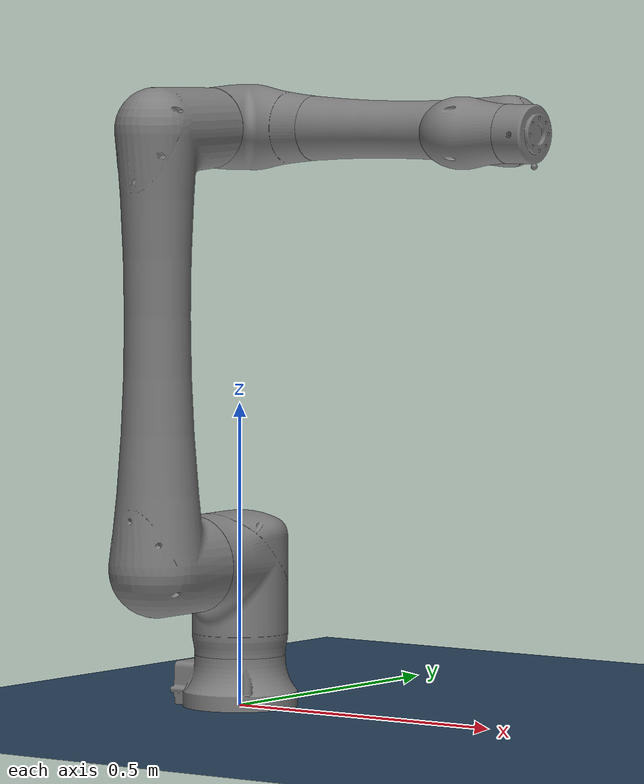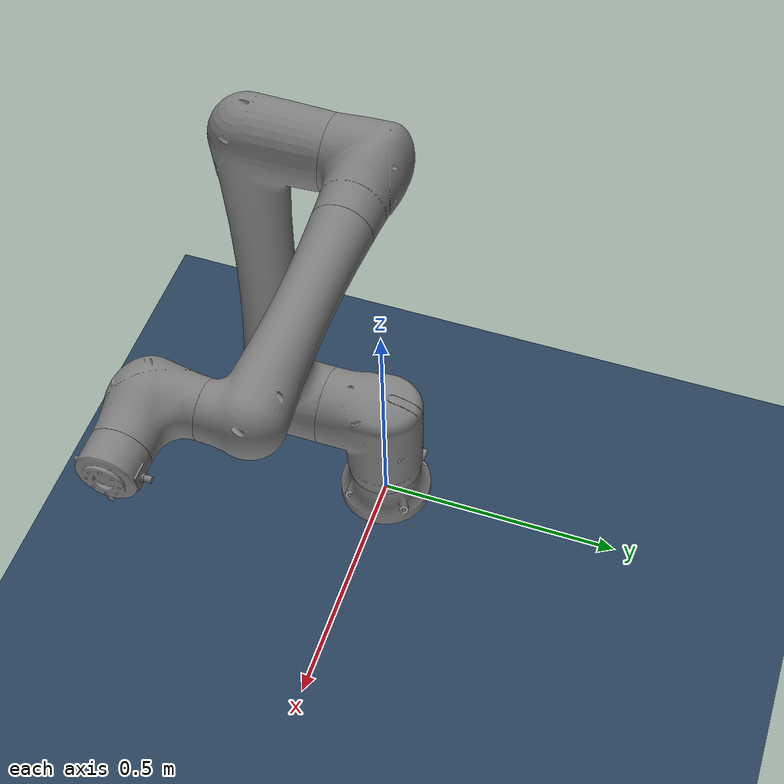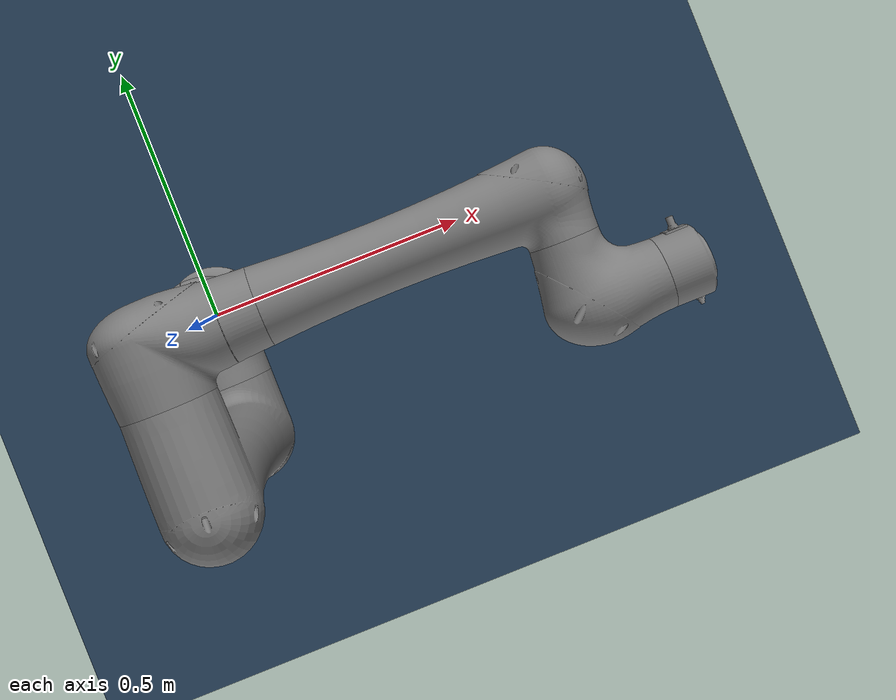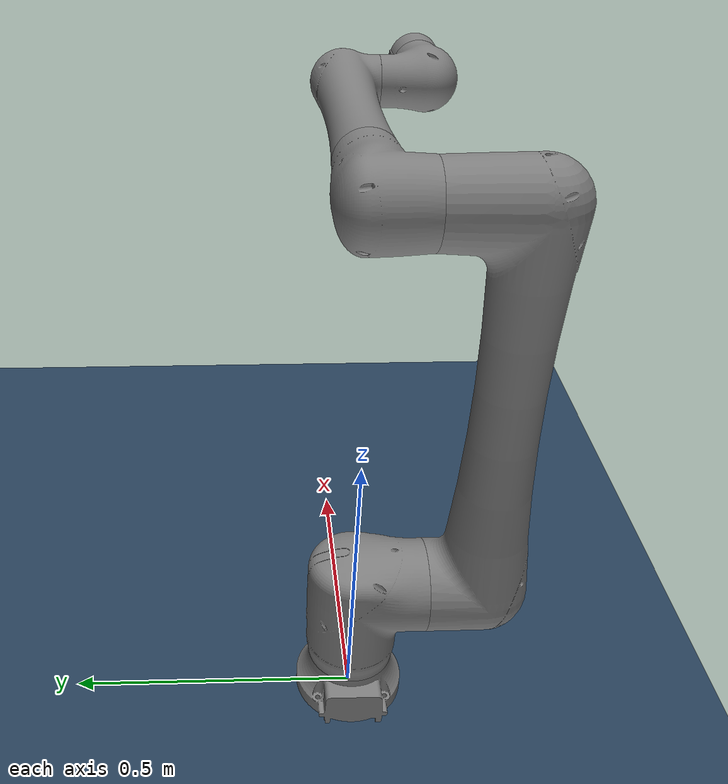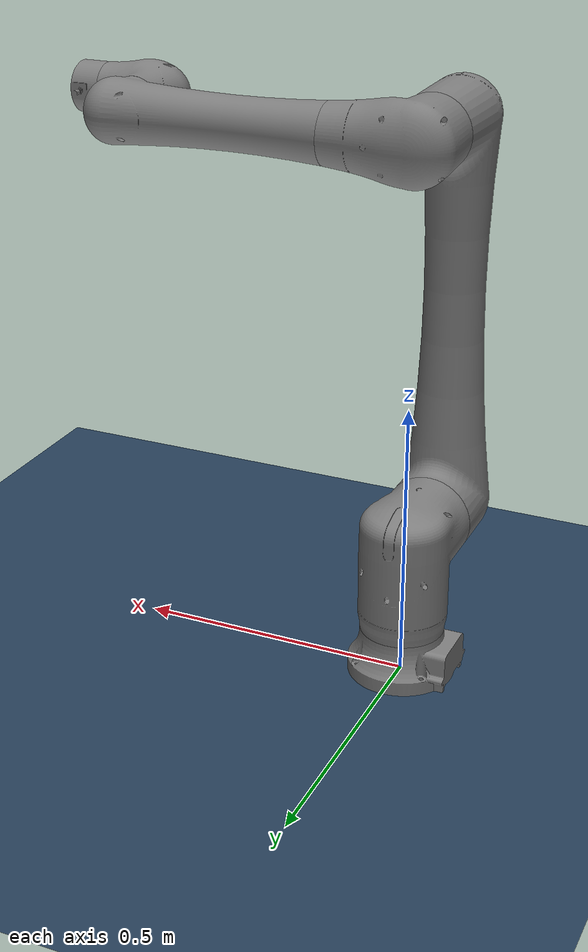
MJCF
<mujoco model="crx10ial scene">
  <include file="crx10ial.xml"/>

  <statistic center="0.3 0 0.4" extent="0.8"/>

  <visual>
    <headlight diffuse="0.6 0.6 0.6" ambient="0.1 0.1 0.1" specular="0 0 0"/>
    <rgba haze="0.15 0.25 0.35 1"/>
    <global azimuth="120" elevation="-20"/>
  </visual>

  <asset>
    <texture type="skybox" builtin="gradient" rgb1="0.3 0.5 0.7" rgb2="0 0 0" width="512" height="3072"/>
    <texture type="2d" name="groundplane" builtin="checker" mark="edge" rgb1="0.2 0.3 0.4" rgb2="0.1 0.2 0.3"
      markrgb="0.8 0.8 0.8" width="300" height="300"/>
    <material name="groundplane" texture="groundplane" texuniform="true" texrepeat="5 5" reflectance="0.2"/>
  </asset>

  <worldbody>
    <light pos="0 0 1.5" dir="0 0 -1" directional="true"/>
    <geom name="floor" size="0 0 0.05" type="plane" material="groundplane"/>
  </worldbody>
</mujoco>

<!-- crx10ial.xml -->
<mujoco model="crx-10ial">
  <compiler angle="radian" meshdir="meshes" autolimits="true"/>

  <option integrator="implicitfast"/>

  <default>
    <default class="crx-10ial">
      <material specular="0.5" shininess="0.25"/>
      <joint pos="0 0 0" axis="1 0 0" range="-3.1415 3.1415" armature="0.1"/>
      <general gaintype="fixed" biastype="affine" ctrlrange="-3.1415 3.1415" gainprm="2000" biasprm="0 -2000 -400" forcerange="-150 150"/>

     <default class="size4">
        <joint range="-3.1415 3.1415"/>
        <general ctrlrange="-3.1415 3.1415"/>
      </default>

      <default class="size3">
        <joint range="-9.42478 9.42478"/>
        <general gainprm="500" biasprm="0 -500 -100" forcerange="-28 28"/>
      </default>

      <default class="size2">
        <joint range="-6.63225 6.63225"/>
        <general gainprm="500" biasprm="0 -500 -100" forcerange="-28 28"/>
      </default>

      <default class="size1">
        <joint range="-3.1415 3.1415"/>
        <general gainprm="500" biasprm="0 -500 -100" forcerange="-28 28"/>
      </default>

      <default class="visual">
        <geom type="mesh" contype="0" conaffinity="0" group="1" density="0"/>
      </default>

    </default>
  </default>

  <asset>
    <material class="crx-10ial" name="black" rgba="0 0 0 1"/>
    <material class="crx-10ial" name="white" rgba="1 1 1 1"/>

    <mesh name="base_link" file="base_link.stl" scale="0.001 0.001 0.001"/>
    <mesh name="link_1" file="link_1.stl" scale="0.001 0.001 0.001"/>
    <mesh name="link_2" file="link_2.stl" scale="0.001 0.001 0.001"/>
    <mesh name="link_3" file="link_3.stl" scale="0.001 0.001 0.001"/>
    <mesh name="link_4" file="link_4.stl" scale="0.001 0.001 0.001"/>
    <mesh name="link_5" file="link_5.stl" scale="0.001 0.001 0.001"/>
    <mesh name="link_6" file="link_6.stl" scale="0.001 0.001 0.001"/>
  </asset>

  <worldbody>
    <body name="base_link" pos="0 0 0">
      <inertial pos="-0.0054014 -3.95078e-07 0.0408677" quat="0 0 0 1" mass="1e-1" diaginertia="0.034902 0.04052 0.059728"/>
      <geom class="visual" mesh="base_link"/>
      <geom type="mesh" material="black" mesh="base_link"/>
      <body name="link_1" pos="0 0 0.085">
        <inertial pos="1.83322e-07 -0.0176823 0.123907" quat="0.984366 0.176133 -4.88205e-06 4.66603e-06" mass="1e-1" diaginertia="0.28763 0.255835 0.169911"/>
        <joint name="Revolute 1" pos="0 0 0" axis="0 0 1"/>
        <geom class="visual" pos="0 0 -0.085" mesh="link_1"/>
        <geom material="white" pos="0 0 -0.085" type="mesh" mesh="link_1"/>
        <body name="link_2" pos="0 -0.119 0.159">
          <inertial pos="1.13642e-07 -0.0831641 0.340179" quat="0.999903 -0.013912 0 0" mass="1e-1" diaginertia="7.52834 7.44337 0.292956"/>
          <joint name="Revolute 2" pos="0 0 0" axis="0 -1 0"/>
          <geom class="visual" pos="0 0.119 -0.244"  mesh="link_2"/>
          <geom material="white" pos="0 0.119 -0.244" type="mesh" mesh="link_2"/>
          <body name="link_3" pos="2.3e-05 0.044 0.710161">
            <inertial pos="0.0352042 0.0685322 1.75694e-07" quat="-0.0428016 0.70581 0.0428016 0.70581" mass="1e-1" diaginertia="0.100913 0.0993525 0.0500085"/>
            <joint name="Revolute 3" pos="0 0 0" axis="0 1 0"/>
            <geom class="visual" pos="-2.3e-05 0.075 -0.954161" mesh="link_3"/>
            <geom material="white" pos="-2.3e-05 0.075 -0.954161" type="mesh" mesh="link_3"/>
            <body name="link_4" pos="0.153 0.075 0">
              <inertial pos="0.228345 -0.0016928 1.62433e-07" quat="0.00604209 0.707081 -0.00604209 0.707081" mass="1e-1" diaginertia="0.466364 0.464395 0.0352257"/>
              <joint name="Revolute 4" pos="0 0 0" axis="1 0 0"/>
              <geom class="visual" pos="-0.153023 0 -0.954161" mesh="link_4"/>
              <geom material="white" pos="-0.153023 0 -0.954161" type="mesh" mesh="link_4"/>
              <body name="link_5" pos="0.386 -0.064 0">
                <inertial pos="0.0202185 -0.0730377 4.06449e-07" quat="0.181175 0.683502 -0.181175 0.683502" mass="1e-1" diaginertia="0.031492 0.0268089 0.0197951"/>
                <joint name="Revolute 5" pos="0 0 0" axis="0 -1 0"/>
                <geom class="visual" pos="-0.539023 0.064 -0.954161" mesh="link_5"/>
                <geom material="white" pos="-0.539023 0.064 -0.954161" type="mesh" mesh="link_5"/>
                <body name="link_6" pos="0.0995 -0.085 0">
                  <inertial pos="0.0275666 0.000474934 4.59869e-06" quat="0.707099 0.707099 -0.00339504 -0.00339504" mass="1e-1" diaginertia="0.00305408 0.002302 0.00222092"/>
                  <joint name="Revolute 6" pos="0 0 0" axis="1 0 0"/>
                  <geom class="visual" pos="-0.638523 0.149 -0.954161" mesh="link_6"/>
                  <geom material="black" pos="-0.638523 0.149 -0.954161" type="mesh" mesh="link_6"/>

                  <body name="tool0_link" pos="0.05 0 0" quat="0.7071068 0 0.7071068 0">
                    <site name="attachment_site" pos="0.05 0 0" quat="0 0 0 1"/>
                    <site name="eef_site" pos="0.05 0 0" quat="0 0 0 1"/>
                  </body>
                </body>
              </body>
            </body>
          </body>
        </body>
      </body>
    </body>
  </worldbody>

  <actuator>
    <general class="size4" name="link_1" joint="Revolute 1"/>
    <general class="size4" name="link_2" joint="Revolute 2"/>
    <general class="size3" name="link_3" joint="Revolute 3"/>
    <general class="size2" name="link_4" joint="Revolute 4"/>
    <general class="size1" name="link_5" joint="Revolute 5"/>
    <general class="size2" name="link_6" joint="Revolute 6"/>
  </actuator>

</mujoco>
